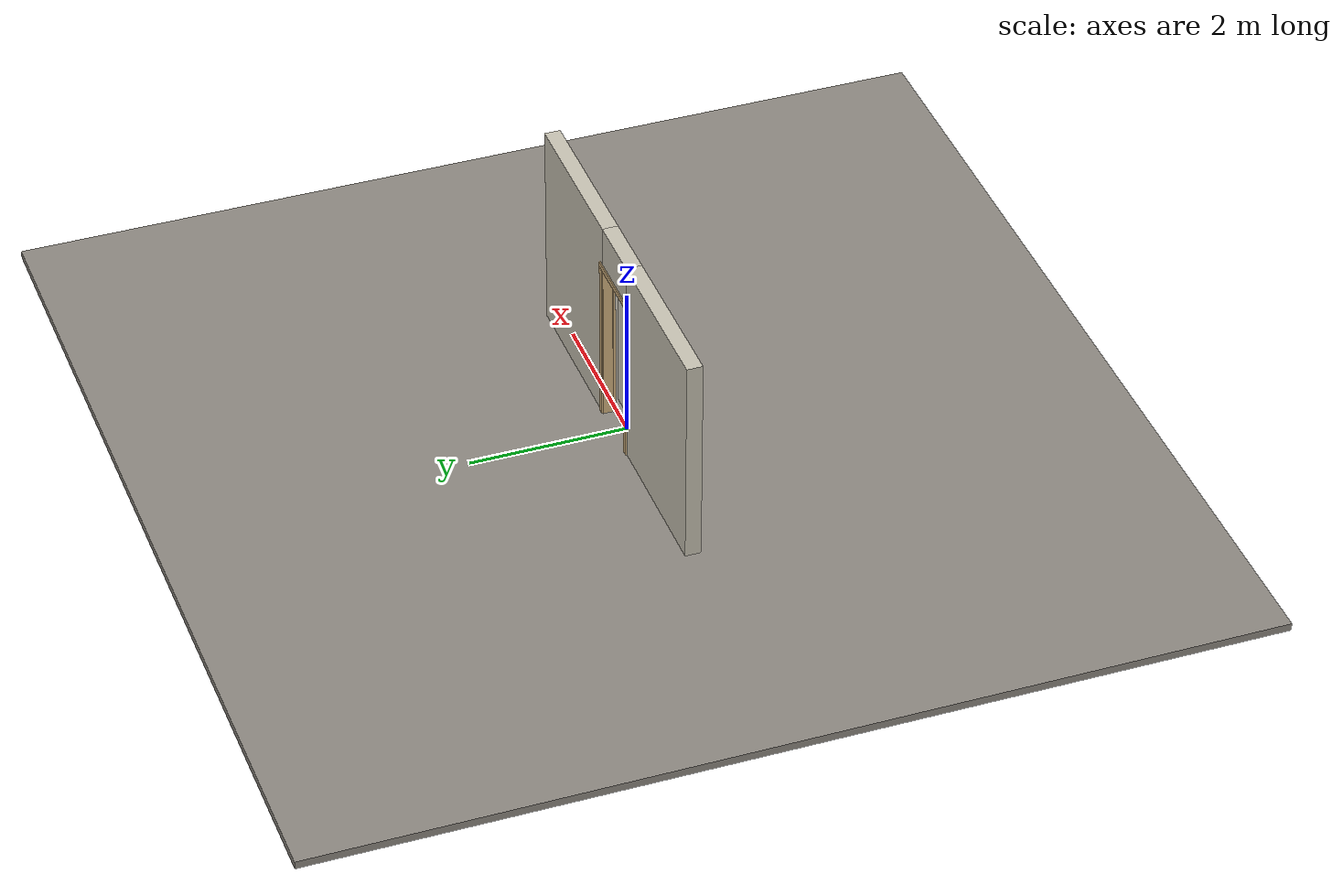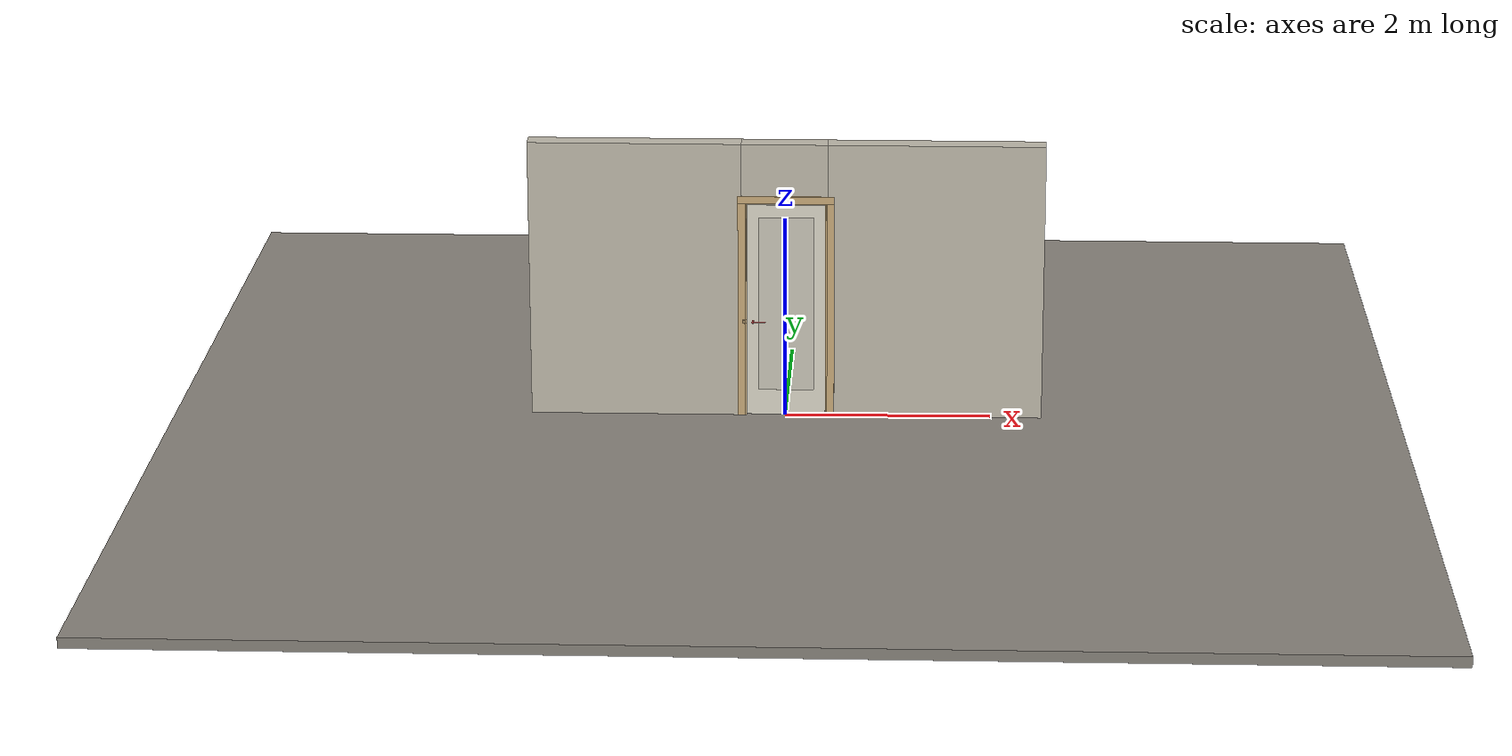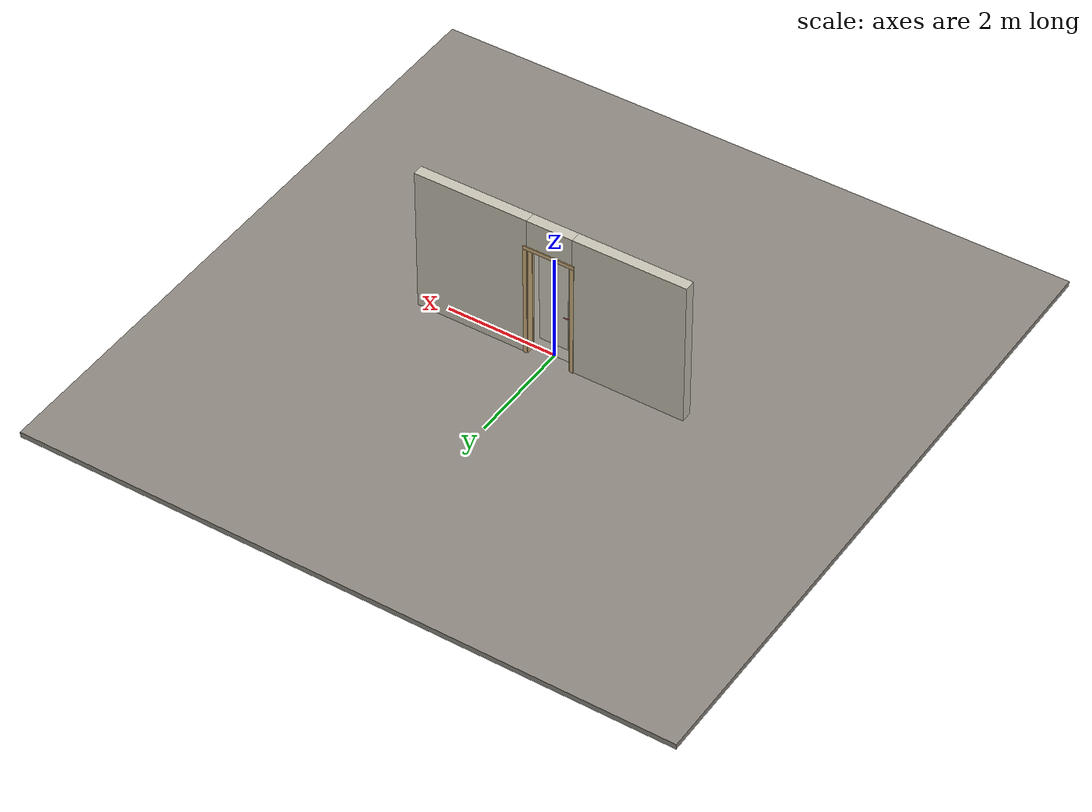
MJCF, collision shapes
<?xml version="1.0" ?>
<mujoco model="db0760_swing_single_full">
  <compiler angle="radian" meshdir="../../hardware" texturedir="../../textures" autolimits="true" inertiafromgeom="false"/>
  <option timestep="0.002" integrator="implicitfast" cone="elliptic" impratio="10" noslip_iterations="3">
    <flag multiccd="enable"/>
  </option>
  <size memory="16M"/>
  <default>
    <geom condim="4" solref="0.005 1" solimp="0.95 0.99 0.001"/>
    <joint solreflimit="0.005 1" solimplimit="0.95 0.99 0.001"/>
    <tendon solreflimit="0.005 1"/>
    <equality solref="0.002 1"/>
  </default>
  <visual>
    <headlight ambient="0.4 0.4 0.4" diffuse="0.7 0.7 0.7" specular="0.2 0.2 0.2"/>
    <quality shadowsize="4096"/>
    <map znear="0.01" zfar="60"/>
  </visual>
  <asset>
    <mesh name="hinge_96510cf394" file="hinge_96510cf394.obj"/>
    <mesh name="hinge_jamb_7fd4ca52b2" file="hinge_jamb_7fd4ca52b2.obj"/>
    <mesh name="lever_57205841c3" file="lever_57205841c3.obj"/>
    <material name="mat_floor" rgba="0.55 0.53 0.5 1" specular="0.2" shininess="0.15" reflectance="0"/>
    <material name="mat_wall" rgba="0.78 0.76 0.7 1" specular="0.2" shininess="0.1" reflectance="0"/>
    <material name="mat_leaf" rgba="0.9 0.88 0.82 1" specular="0.2" shininess="0.63" reflectance="0"/>
    <material name="mat_leaf_panel" rgba="0.828 0.81 0.754 1" specular="0.2" shininess="0.63" reflectance="0"/>
    <material name="mat_hinge" rgba="0.65 0.66 0.68 1" specular="0.74" shininess="0.5" reflectance="0.36"/>
    <material name="mat_op_black_matte_metal" rgba="0.05 0.05 0.05 1" specular="0.38" shininess="0.3" reflectance="0.12"/>
    <material name="mat_trim" rgba="0.85 0.66 0.3 1" specular="0.8" shininess="0.75" reflectance="0.4"/>
    <material name="mat_bolt" rgba="0.85 0.66 0.3 1" specular="0.8" shininess="0.75" reflectance="0.4"/>
    <material name="mat_frame" rgba="0.82 0.7 0.5 1" specular="0.2" shininess="0.45" reflectance="0"/>
    <texture name="skybox" type="skybox" builtin="gradient" rgb1="0.6 0.7 0.85" rgb2="0.9 0.92 0.95" width="256" height="256"/>
  </asset>
  <worldbody>
    <light name="sun" pos="1.5 -2.5 4" dir="-0.3 0.5 -0.8" directional="true" diffuse="0.8 0.8 0.8" specular="0.3 0.3 0.3" castshadow="true"/>
    <light name="fill" pos="-1.5 2.5 3" dir="0.3 -0.5 -0.7" directional="true" diffuse="0.35 0.35 0.4" castshadow="false"/>
    <camera name="robot_view" pos="0 -2.562312 1.812087" xyaxes="1 0 0 0 0.26963 0.962964" fovy="52"/>
    <camera name="far_view" pos="0 2.713312 1.812087" xyaxes="-1 0 0 0 -0.26963 0.962964" fovy="52"/>
    <camera name="iso" pos="-2.004737 -2.140262 2.234138" xyaxes="0.741536 -0.670913 0 0.242917 0.268487 0.932151" fovy="46"/>
    <camera name="detail_handle" pos="-0.0445 -0.8725 1.245" xyaxes="0.97561 0.219512 0 -0.070934 0.315262 0.94635" fovy="38"/>
    <geom name="floor" type="box" size="6 6 0.05" pos="0 0 -0.05" material="mat_floor" group="0" contype="1" conaffinity="1" friction="0.8 0.005 0.0001" density="2400"/>
    <geom name="wall_left" type="box" size="1.03325 0.1 1.3735" pos="-1.46675 0.0755 1.3735" material="mat_wall" group="0" contype="1" conaffinity="1" friction="0.6 0.005 0.0001" density="800"/>
    <geom name="wall_right" type="box" size="1.04825 0.1 1.3735" pos="1.45175 0.0755 1.3735" material="mat_wall" group="0" contype="1" conaffinity="1" friction="0.6 0.005 0.0001" density="800"/>
    <geom name="wall_header" type="box" size="0.4185 0.1 0.2755" pos="-0.015 0.0755 2.4715" material="mat_wall" group="0" contype="1" conaffinity="1" friction="0.6 0.005 0.0001" density="800"/>
    <geom name="hinge_0_jamb" type="mesh" mesh="hinge_jamb_7fd4ca52b2" pos="0.3815 -0.0245 0.259" quat="0 0 1 0" material="mat_hinge" group="1" contype="0" conaffinity="0" density="7850"/>
    <geom name="hinge_1_jamb" type="mesh" mesh="hinge_jamb_7fd4ca52b2" pos="0.3815 -0.0245 1.076" quat="0 0 1 0" material="mat_hinge" group="1" contype="0" conaffinity="0" density="7850"/>
    <geom name="hinge_2_jamb" type="mesh" mesh="hinge_jamb_7fd4ca52b2" pos="0.3815 -0.0245 1.963" quat="0 0 1 0" material="mat_hinge" group="1" contype="0" conaffinity="0" density="7850"/>
    <geom name="jamb_hinge" type="box" size="0.0095 0.1 1.0735" pos="0.394 0.0755 1.0735" material="mat_frame" group="0" contype="1" conaffinity="1" friction="0.6 0.005 0.0001" density="400"/>
    <geom name="strike_965_wall_n" type="box" size="0.0245 0.083825 0.0167" pos="-0.409 0.091675 0.965" material="mat_frame" group="0" contype="1" conaffinity="1" friction="0.6 0.005 0.0001" density="400"/>
    <geom name="strike_965_wall_p" type="box" size="0.0245 0.008 0.0167" pos="-0.409 -0.01585 0.965" material="mat_frame" group="0" contype="1" conaffinity="1" friction="0.6 0.005 0.0001" density="400"/>
    <geom name="strike_965_ramp" type="box" size="0.0245 0.01649 0.0167" pos="-0.413636 -0.028673 0.965" quat="0.977148 0 0 -0.212558" material="mat_frame" group="0" contype="1" conaffinity="1" friction="0.12 0.005 0.0001" density="400"/>
    <geom name="strike_965_back" type="box" size="0.01615 0.00785 0.0167" pos="-0.41735 0 0.965" material="mat_frame" group="0" contype="1" conaffinity="1" friction="0.6 0.005 0.0001" density="400"/>
    <geom name="jamb_strike_0" type="box" size="0.0245 0.1 0.47415" pos="-0.409 0.0755 0.47415" material="mat_frame" group="0" contype="1" conaffinity="1" friction="0.6 0.005 0.0001" density="400"/>
    <geom name="jamb_strike_1" type="box" size="0.0245 0.1 0.58265" pos="-0.409 0.0755 1.56435" material="mat_frame" group="0" contype="1" conaffinity="1" friction="0.6 0.005 0.0001" density="400"/>
    <geom name="jamb_head" type="box" size="0.4185 0.1 0.0095" pos="-0.015 0.0755 2.1565" material="mat_frame" group="0" contype="1" conaffinity="1" friction="0.6 0.005 0.0001" density="400"/>
    <geom name="head_stud" type="box" size="0.4185 0.1 0.015" pos="-0.015 0.0755 2.181" material="mat_wall" group="0" contype="1" conaffinity="1" friction="0.6 0.005 0.0001" density="500"/>
    <geom name="stop_hinge" type="box" size="0.0055 0.016 1.0735" pos="0.379 0.034 1.0735" material="mat_frame" group="0" contype="1" conaffinity="1" friction="0.6 0.005 0.0001" density="400"/>
    <geom name="stop_strike" type="box" size="0.0055 0.016 1.0735" pos="-0.379 0.034 1.0735" material="mat_frame" group="0" contype="1" conaffinity="1" friction="0.6 0.005 0.0001" density="400"/>
    <geom name="stop_head" type="box" size="0.3845 0.016 0.0055" pos="0 0.034 2.1415" material="mat_frame" group="0" contype="1" conaffinity="1" friction="0.6 0.005 0.0001" density="400"/>
    <geom name="casing_l_n" type="box" size="0.035 0.008 1.083" pos="-0.4335 -0.0325 1.0735" material="mat_frame" group="2" contype="0" conaffinity="0" density="400"/>
    <geom name="casing_r_n" type="box" size="0.035 0.008 1.083" pos="0.4335 -0.0325 1.0735" material="mat_frame" group="2" contype="0" conaffinity="0" density="400"/>
    <geom name="casing_h_n" type="box" size="0.4685 0.008 0.035" pos="0 -0.0325 2.196" material="mat_frame" group="2" contype="0" conaffinity="0" density="400"/>
    <geom name="casing_l_p" type="box" size="0.035 0.008 1.083" pos="-0.4335 0.1835 1.0735" material="mat_frame" group="2" contype="0" conaffinity="0" density="400"/>
    <geom name="casing_r_p" type="box" size="0.035 0.008 1.083" pos="0.4335 0.1835 1.0735" material="mat_frame" group="2" contype="0" conaffinity="0" density="400"/>
    <geom name="casing_h_p" type="box" size="0.4685 0.008 0.035" pos="0 0.1835 2.196" material="mat_frame" group="2" contype="0" conaffinity="0" density="400"/>
    <site name="approach_point" pos="0 -1.5 0" quat="1 0 0 0" size="0.05" rgba="0.2 0.9 0.2 0.5" group="4"/>
    <site name="goal_point" pos="0 1.5 0" quat="1 0 0 0" size="0.05" rgba="0.2 0.9 0.2 0.5" group="4"/>
    <site name="door_plane_center" pos="0 0 1.0735" quat="1 0 0 0" size="0.02" rgba="0.2 0.9 0.2 0.5" group="4"/>
    <body name="leaf" pos="0.3845 0 0">
      <inertial pos="-0.371528 -0.000495 1.076725" mass="12.361195" quat="0.500637 -0.49885 0.501135 0.499375" diaginertia="0.63923644 4.730197233 5.366694192"/>
      <joint name="leaf_hinge" type="hinge" axis="0 0 1" pos="-0.003 -0.0245 0" limited="true" range="0 2.356194" damping="0.179937" frictionloss="0.492656" armature="0.02"/>
      <geom name="leaf_slab" type="box" size="0.381 0.0175 1.067" pos="-0.384 0 1.076" material="mat_leaf" group="0" contype="1" conaffinity="1" friction="0.35 0.005 0.0001" density="1"/>
      <geom name="leaf_panel_0_n" type="box" size="0.271 0.003 0.87628" pos="-0.384 -0.0205 1.14002" material="mat_leaf_panel" group="1" contype="0" conaffinity="0" density="1"/>
      <geom name="leaf_panel_0_p" type="box" size="0.271 0.003 0.87628" pos="-0.384 0.0205 1.14002" material="mat_leaf_panel" group="1" contype="0" conaffinity="0" density="1"/>
      <geom name="hinge_0" type="mesh" mesh="hinge_96510cf394" pos="-0.003 -0.0245 0.259" quat="0 0 1 0" material="mat_hinge" group="1" contype="0" conaffinity="0" density="7850"/>
      <geom name="hinge_1" type="mesh" mesh="hinge_96510cf394" pos="-0.003 -0.0245 1.076" quat="0 0 1 0" material="mat_hinge" group="1" contype="0" conaffinity="0" density="7850"/>
      <geom name="hinge_2" type="mesh" mesh="hinge_96510cf394" pos="-0.003 -0.0245 1.963" quat="0 0 1 0" material="mat_hinge" group="1" contype="0" conaffinity="0" density="7850"/>
      <geom name="leaf_latch_bolt_faceplate" type="box" size="0.0006 0.01235 0.0267" pos="-0.7644 0 0.965" material="mat_bolt" group="1" contype="0" conaffinity="0" density="8500"/>
      <site name="leaf_edge_mid" pos="-0.765 0 1.067" quat="1 0 0 0" size="0.02" rgba="0.2 0.9 0.2 0.5" group="4"/>
      <body name="leaf_handle" pos="-0.705 0 0.965">
        <inertial pos="0.018609 0 0" mass="0.798454" quat="0.707107 0 0 -0.707107" diaginertia="0.001003601 0.002236545 0.003135681"/>
        <joint name="leaf_handle_hinge" type="hinge" axis="0 1 0" limited="true" range="0 0.87" damping="0.212416" frictionloss="0.042" stiffness="1" springref="-0.35" armature="0.01"/>
        <geom name="leaf_handle_spindle" type="cylinder" size="0.006 0.0255" pos="0 0 0" quat="0.707107 -0.707107 0 0" material="mat_op_black_matte_metal" group="1" contype="0" conaffinity="0" density="7850"/>
        <geom name="leaf_handle_lever_n" type="mesh" mesh="lever_57205841c3" pos="0 -0.0175 0" quat="0 0 -0.707107 0.707107" material="mat_op_black_matte_metal" group="1" contype="0" conaffinity="0" density="3000"/>
        <geom name="leaf_handle_lever_col_n" type="capsule" size="0.007 0.053" pos="0.06 -0.0725 0" quat="0.707107 0 0.707107 0" material="mat_op_black_matte_metal" group="3" contype="1" conaffinity="1" rgba="0.8 0.3 0.3 0.25" friction="0.7 0.01 0.0001" density="3000"/>
        <geom name="leaf_handle_hub_col_n" type="cylinder" size="0.012 0.022" pos="0 -0.0475 0" quat="0.707107 -0.707107 0 0" material="mat_op_black_matte_metal" group="3" contype="1" conaffinity="1" rgba="0.8 0.3 0.3 0.25" friction="0.6 0.005 0.0001" density="3000"/>
        <geom name="leaf_handle_lever_p" type="mesh" mesh="lever_57205841c3" pos="0 0.0175 0" quat="0 0 0.707107 0.707107" material="mat_op_black_matte_metal" group="1" contype="0" conaffinity="0" density="3000"/>
        <geom name="leaf_handle_lever_col_p" type="capsule" size="0.007 0.053" pos="0.06 0.0725 0" quat="0.707107 0 0.707107 0" material="mat_op_black_matte_metal" group="3" contype="1" conaffinity="1" rgba="0.8 0.3 0.3 0.25" friction="0.7 0.01 0.0001" density="3000"/>
        <geom name="leaf_handle_hub_col_p" type="cylinder" size="0.012 0.022" pos="0 0.0475 0" quat="0.707107 -0.707107 0 0" material="mat_op_black_matte_metal" group="3" contype="1" conaffinity="1" rgba="0.8 0.3 0.3 0.25" friction="0.6 0.005 0.0001" density="3000"/>
        <site name="leaf_handle_grip_n" pos="0.096 -0.0725 0" quat="1 0 0 0" size="0.012" rgba="0.2 0.9 0.2 0.5" group="4"/>
        <site name="leaf_handle_grip_p" pos="0.096 0.0725 0" quat="1 0 0 0" size="0.012" rgba="0.2 0.9 0.2 0.5" group="4"/>
      </body>
      <body name="leaf_latch_bolt" pos="-0.765 0 0.965">
        <inertial pos="0.00865 0 0" mass="0.041419" quat="0.92388 0.382683 0 0" diaginertia="0.000000798 0.000005598 0.000005598"/>
        <joint name="leaf_latch_bolt_slide" type="slide" axis="1 0 0" limited="true" range="0 0.0127" damping="2" frictionloss="0.3" stiffness="300" springref="-0.008333" armature="0.1"/>
        <geom name="leaf_latch_bolt_capsule" type="capsule" size="0.00635 0.015" pos="0.00865 0 0" quat="0.707107 0 -0.707107 0" material="mat_bolt" group="0" contype="1" conaffinity="1" friction="0.2 0.005 0.0001" density="8500"/>
      </body>
    </body>
  </worldbody>
  <tendon>
    <fixed name="leaf_latch_bolt_coupling" limited="true" range="0 10">
      <joint joint="leaf_latch_bolt_slide" coef="1"/>
      <joint joint="leaf_handle_hinge" coef="-0.015679"/>
    </fixed>
  </tendon>
  <sensor>
    <jointpos name="leaf_hinge_pos" joint="leaf_hinge"/>
    <jointvel name="leaf_hinge_vel" joint="leaf_hinge"/>
    <jointpos name="leaf_handle_hinge_pos" joint="leaf_handle_hinge"/>
    <jointvel name="leaf_handle_hinge_vel" joint="leaf_handle_hinge"/>
    <jointpos name="leaf_latch_bolt_slide_pos" joint="leaf_latch_bolt_slide"/>
    <jointvel name="leaf_latch_bolt_slide_vel" joint="leaf_latch_bolt_slide"/>
  </sensor>
</mujoco>
